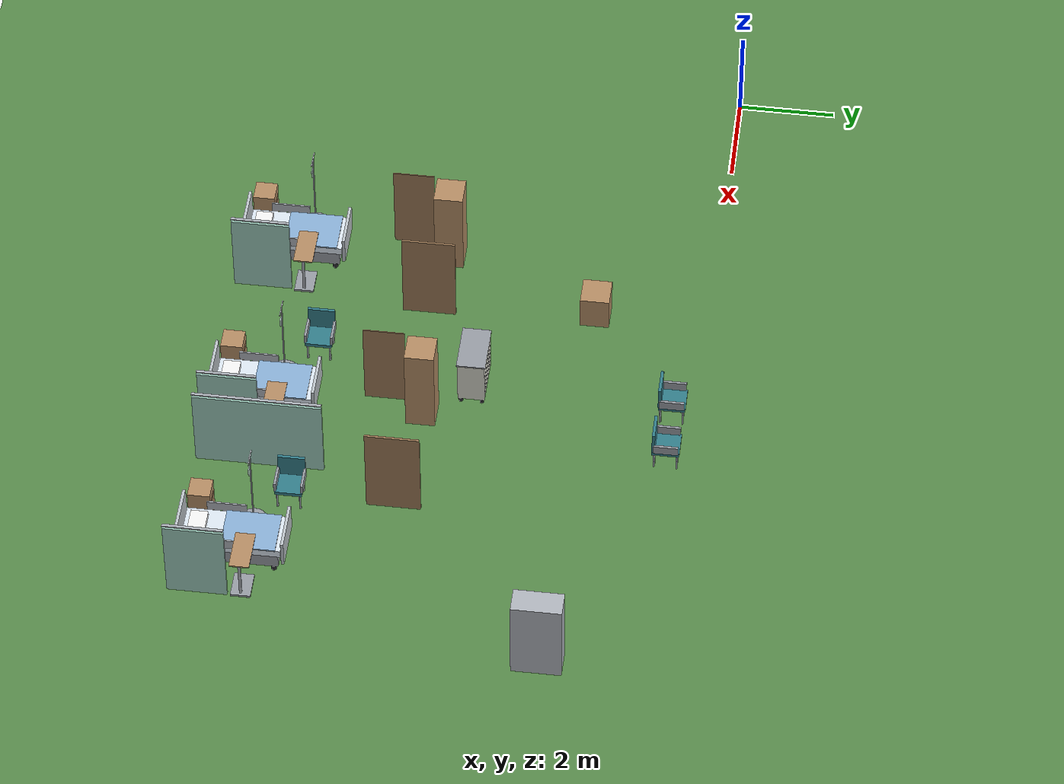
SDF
<sdf version="1.6">
 <world name="hospital">
  <include><uri>model://sun</uri></include>
  <model name="ground_plane">
   <static>true</static>
   <link name="link">
    <collision name="collision">
     <geometry><plane><normal>0 0 1</normal><size>100 100</size></plane></geometry>
     <surface>
      <contact><collide_bitmask>0xffff</collide_bitmask></contact>
      <friction><ode><mu>100</mu><mu2>50</mu2></ode></friction>
     </surface>
    </collision>
    <visual name="visual">
     <cast_shadows>false</cast_shadows>
     <geometry><plane><normal>0 0 1</normal><size>100 100</size></plane></geometry>
     <material>
      <ambient>0.35 0.55 0.3 1</ambient>
      <diffuse>0.35 0.55 0.3 1</diffuse>
      <specular>0 0 0 1</specular>
     </material>
    </visual>
   </link>
  </model>
  <model name="bathroom_door_S3">
   <static>true</static>
   <pose>4.76 -6.4 0 0 0 1.5708</pose>
   <link name="link">
    <visual name="v0">
     <pose>0 0 1 0 0 0</pose>
     <geometry><box><size>0.85 0.02 2</size></box></geometry>
     <material>
      <ambient>0.62 0.48 0.34 1</ambient>
      <diffuse>0.62 0.48 0.34 1</diffuse>
      <specular>0.1 0.1 0.1 1</specular>
     </material>
    </visual>
   </link>
  </model>
  <model name="door_S3">
   <static>true</static>
   <pose>6.7 -5.83 0 0 0 0</pose>
   <link name="link">
    <collision name="c0">
     <pose>0 0 1.04 0 0 0</pose>
     <geometry><box><size>0.045 1.1 2.08</size></box></geometry>
    </collision>
    <visual name="v0">
     <pose>0 0 1.04 0 0 0</pose>
     <geometry><box><size>0.045 1.1 2.08</size></box></geometry>
     <material>
      <ambient>0.62 0.48 0.34 1</ambient>
      <diffuse>0.62 0.48 0.34 1</diffuse>
      <specular>0.1 0.1 0.1 1</specular>
     </material>
    </visual>
   </link>
  </model>
  <model name="wardrobe_S3">
   <static>true</static>
   <pose>5.1 -5.6 0 0 0 6.2832</pose>
   <link name="link">
    <collision name="c0">
     <pose>0 0 1 0 0 0</pose>
     <geometry><box><size>0.6 0.6 2</size></box></geometry>
    </collision>
    <visual name="v0">
     <pose>0 0 1 0 0 0</pose>
     <geometry><box><size>0.6 0.6 2</size></box></geometry>
     <material>
      <ambient>0.72 0.56 0.4 1</ambient>
      <diffuse>0.72 0.56 0.4 1</diffuse>
      <specular>0.1 0.1 0.1 1</specular>
     </material>
    </visual>
    <visual name="v1">
     <pose>0 -0.301 1.025 0 0 0</pose>
     <geometry><box><size>0.02 0.005 0.25</size></box></geometry>
     <material>
      <ambient>0.6 0.62 0.65 1</ambient>
      <diffuse>0.6 0.62 0.65 1</diffuse>
      <specular>0.1 0.1 0.1 1</specular>
     </material>
    </visual>
   </link>
  </model>
  <model name="bed_S3">
   <static>true</static>
   <pose>5.3 -8.8 0 0 0 3.1416</pose>
   <link name="link">
    <collision name="c0">
     <pose>-0.38 -0.85 0.075 0 0 0</pose>
     <geometry><cylinder><radius>0.05</radius><length>0.15</length></cylinder></geometry>
    </collision>
    <visual name="v0">
     <pose>-0.38 -0.85 0.075 0 0 0</pose>
     <geometry><cylinder><radius>0.05</radius><length>0.15</length></cylinder></geometry>
     <material>
      <ambient>0.15 0.15 0.17 1</ambient>
      <diffuse>0.15 0.15 0.17 1</diffuse>
      <specular>0.1 0.1 0.1 1</specular>
     </material>
    </visual>
    <collision name="c1">
     <pose>-0.38 0.85 0.075 0 0 0</pose>
     <geometry><cylinder><radius>0.05</radius><length>0.15</length></cylinder></geometry>
    </collision>
    <visual name="v1">
     <pose>-0.38 0.85 0.075 0 0 0</pose>
     <geometry><cylinder><radius>0.05</radius><length>0.15</length></cylinder></geometry>
     <material>
      <ambient>0.15 0.15 0.17 1</ambient>
      <diffuse>0.15 0.15 0.17 1</diffuse>
      <specular>0.1 0.1 0.1 1</specular>
     </material>
    </visual>
    <collision name="c2">
     <pose>0.38 -0.85 0.075 0 0 0</pose>
     <geometry><cylinder><radius>0.05</radius><length>0.15</length></cylinder></geometry>
    </collision>
    <visual name="v2">
     <pose>0.38 -0.85 0.075 0 0 0</pose>
     <geometry><cylinder><radius>0.05</radius><length>0.15</length></cylinder></geometry>
     <material>
      <ambient>0.15 0.15 0.17 1</ambient>
      <diffuse>0.15 0.15 0.17 1</diffuse>
      <specular>0.1 0.1 0.1 1</specular>
     </material>
    </visual>
    <collision name="c3">
     <pose>0.38 0.85 0.075 0 0 0</pose>
     <geometry><cylinder><radius>0.05</radius><length>0.15</length></cylinder></geometry>
    </collision>
    <visual name="v3">
     <pose>0.38 0.85 0.075 0 0 0</pose>
     <geometry><cylinder><radius>0.05</radius><length>0.15</length></cylinder></geometry>
     <material>
      <ambient>0.15 0.15 0.17 1</ambient>
      <diffuse>0.15 0.15 0.17 1</diffuse>
      <specular>0.1 0.1 0.1 1</specular>
     </material>
    </visual>
    <collision name="c4">
     <pose>0 0 0.3 0 0 0</pose>
     <geometry><box><size>0.9 1.9 0.3</size></box></geometry>
    </collision>
    <visual name="v4">
     <pose>0 0 0.3 0 0 0</pose>
     <geometry><box><size>0.9 1.9 0.3</size></box></geometry>
     <material>
      <ambient>0.6 0.62 0.65 1</ambient>
      <diffuse>0.6 0.62 0.65 1</diffuse>
      <specular>0.1 0.1 0.1 1</specular>
     </material>
    </visual>
    <visual name="v5">
     <pose>0 0 0.535 0 0 0</pose>
     <geometry><box><size>0.9 2 0.17</size></box></geometry>
     <material>
      <ambient>0.88 0.92 0.96 1</ambient>
      <diffuse>0.88 0.92 0.96 1</diffuse>
      <specular>0.1 0.1 0.1 1</specular>
     </material>
    </visual>
    <collision name="c6">
     <pose>0 1.05 0.7 0 0 0</pose>
     <geometry><box><size>1 0.06 0.8</size></box></geometry>
    </collision>
    <visual name="v6">
     <pose>0 1.05 0.7 0 0 0</pose>
     <geometry><box><size>1 0.06 0.8</size></box></geometry>
     <material>
      <ambient>0.75 0.78 0.8 1</ambient>
      <diffuse>0.75 0.78 0.8 1</diffuse>
      <specular>0.1 0.1 0.1 1</specular>
     </material>
    </visual>
    <collision name="c7">
     <pose>0 -1.05 0.6 0 0 0</pose>
     <geometry><box><size>1 0.06 0.6</size></box></geometry>
    </collision>
    <visual name="v7">
     <pose>0 -1.05 0.6 0 0 0</pose>
     <geometry><box><size>1 0.06 0.6</size></box></geometry>
     <material>
      <ambient>0.75 0.78 0.8 1</ambient>
      <diffuse>0.75 0.78 0.8 1</diffuse>
      <specular>0.1 0.1 0.1 1</specular>
     </material>
    </visual>
    <visual name="v8">
     <pose>0 0.72 0.68 0 0 0</pose>
     <geometry><box><size>0.6 0.35 0.12</size></box></geometry>
     <material>
      <ambient>0.97 0.97 0.97 1</ambient>
      <diffuse>0.97 0.97 0.97 1</diffuse>
      <specular>0.1 0.1 0.1 1</specular>
     </material>
    </visual>
    <visual name="v9">
     <pose>0 -0.35 0.635 0 0 0</pose>
     <geometry><box><size>0.92 1.1 0.03</size></box></geometry>
     <material>
      <ambient>0.55 0.7 0.85 1</ambient>
      <diffuse>0.55 0.7 0.85 1</diffuse>
      <specular>0.1 0.1 0.1 1</specular>
     </material>
    </visual>
    <visual name="v10">
     <pose>-0.47 0.2 0.73 0 0 0</pose>
     <geometry><box><size>0.03 0.8 0.22</size></box></geometry>
     <material>
      <ambient>0.7 0.72 0.75 1</ambient>
      <diffuse>0.7 0.72 0.75 1</diffuse>
      <specular>0.1 0.1 0.1 1</specular>
     </material>
    </visual>
    <visual name="v11">
     <pose>0.47 0.2 0.73 0 0 0</pose>
     <geometry><box><size>0.03 0.8 0.22</size></box></geometry>
     <material>
      <ambient>0.7 0.72 0.75 1</ambient>
      <diffuse>0.7 0.72 0.75 1</diffuse>
      <specular>0.1 0.1 0.1 1</specular>
     </material>
    </visual>
   </link>
  </model>
  <model name="bedside_cabinet_S3">
   <static>true</static>
   <pose>4.45 -9.6 0 0 0 3.1416</pose>
   <link name="link">
    <collision name="c0">
     <pose>0 0 0.4 0 0 0</pose>
     <geometry><box><size>0.45 0.45 0.8</size></box></geometry>
    </collision>
    <visual name="v0">
     <pose>0 0 0.4 0 0 0</pose>
     <geometry><box><size>0.45 0.45 0.8</size></box></geometry>
     <material>
      <ambient>0.72 0.56 0.4 1</ambient>
      <diffuse>0.72 0.56 0.4 1</diffuse>
      <specular>0.1 0.1 0.1 1</specular>
     </material>
    </visual>
    <visual name="v1">
     <pose>0 -0.226 0.51 0 0 0</pose>
     <geometry><box><size>0.35 0.005 0.12</size></box></geometry>
     <material>
      <ambient>0.6 0.45 0.32 1</ambient>
      <diffuse>0.6 0.45 0.32 1</diffuse>
      <specular>0.1 0.1 0.1 1</specular>
     </material>
    </visual>
   </link>
  </model>
  <model name="iv_stand_S3">
   <static>true</static>
   <pose>4.5 -8.55 0 0 0 0</pose>
   <link name="link">
    <collision name="c0">
     <pose>0 0 0.015 0 0 0</pose>
     <geometry><cylinder><radius>0.28</radius><length>0.03</length></cylinder></geometry>
    </collision>
    <visual name="v0">
     <pose>0 0 0.015 0 0 0</pose>
     <geometry><cylinder><radius>0.28</radius><length>0.03</length></cylinder></geometry>
     <material>
      <ambient>0.6 0.62 0.65 1</ambient>
      <diffuse>0.6 0.62 0.65 1</diffuse>
      <specular>0.1 0.1 0.1 1</specular>
     </material>
    </visual>
    <collision name="c1">
     <pose>0 0 0.98 0 0 0</pose>
     <geometry><cylinder><radius>0.015</radius><length>1.9</length></cylinder></geometry>
    </collision>
    <visual name="v1">
     <pose>0 0 0.98 0 0 0</pose>
     <geometry><cylinder><radius>0.015</radius><length>1.9</length></cylinder></geometry>
     <material>
      <ambient>0.7 0.72 0.75 1</ambient>
      <diffuse>0.7 0.72 0.75 1</diffuse>
      <specular>0.1 0.1 0.1 1</specular>
     </material>
    </visual>
    <visual name="v2">
     <pose>0 0 1.91 0 0 0</pose>
     <geometry><box><size>0.4 0.02 0.02</size></box></geometry>
     <material>
      <ambient>0.7 0.72 0.75 1</ambient>
      <diffuse>0.7 0.72 0.75 1</diffuse>
      <specular>0.1 0.1 0.1 1</specular>
     </material>
    </visual>
    <visual name="v3">
     <pose>0.12 0 1.64 0 0 0</pose>
     <geometry><box><size>0.1 0.03 0.18</size></box></geometry>
     <material>
      <ambient>0.85 0.92 0.95 0.7</ambient>
      <diffuse>0.85 0.92 0.95 0.7</diffuse>
      <specular>0.1 0.1 0.1 1</specular>
     </material>
    </visual>
   </link>
  </model>
  <model name="overbed_table_S3">
   <static>true</static>
   <pose>6.05 -8.5 0 0 0 0</pose>
   <link name="link">
    <collision name="c0">
     <pose>0.15 0 0.025 0 0 0</pose>
     <geometry><box><size>0.55 0.4 0.05</size></box></geometry>
    </collision>
    <visual name="v0">
     <pose>0.15 0 0.025 0 0 0</pose>
     <geometry><box><size>0.55 0.4 0.05</size></box></geometry>
     <material>
      <ambient>0.6 0.62 0.65 1</ambient>
      <diffuse>0.6 0.62 0.65 1</diffuse>
      <specular>0.1 0.1 0.1 1</specular>
     </material>
    </visual>
    <collision name="c1">
     <pose>0.35 0 0.45 0 0 0</pose>
     <geometry><box><size>0.05 0.05 0.8</size></box></geometry>
    </collision>
    <visual name="v1">
     <pose>0.35 0 0.45 0 0 0</pose>
     <geometry><box><size>0.05 0.05 0.8</size></box></geometry>
     <material>
      <ambient>0.7 0.72 0.75 1</ambient>
      <diffuse>0.7 0.72 0.75 1</diffuse>
      <specular>0.1 0.1 0.1 1</specular>
     </material>
    </visual>
    <visual name="v2">
     <pose>-0.05 0 0.865 0 0 0</pose>
     <geometry><box><size>0.85 0.4 0.03</size></box></geometry>
     <material>
      <ambient>0.72 0.56 0.4 1</ambient>
      <diffuse>0.72 0.56 0.4 1</diffuse>
      <specular>0.1 0.1 0.1 1</specular>
     </material>
    </visual>
   </link>
  </model>
  <model name="curtain_S3">
   <static>true</static>
   <pose>6.7 -9.3 0 0 0 0</pose>
   <link name="link">
    <collision name="c0">
     <pose>0 0 1.275 0 0 0</pose>
     <geometry><box><size>0.06 1.2 1.85</size></box></geometry>
    </collision>
    <visual name="v0">
     <pose>0 0 1.275 0 0 0</pose>
     <geometry><box><size>0.06 1.2 1.85</size></box></geometry>
     <material>
      <ambient>0.62 0.8 0.74 1</ambient>
      <diffuse>0.62 0.8 0.74 1</diffuse>
      <specular>0.1 0.1 0.1 1</specular>
     </material>
    </visual>
    <visual name="v1">
     <pose>0 0 2.265 0 0 0</pose>
     <geometry><box><size>0.06 1.2 0.03</size></box></geometry>
     <material>
      <ambient>0.7 0.72 0.75 1</ambient>
      <diffuse>0.7 0.72 0.75 1</diffuse>
      <specular>0.1 0.1 0.1 1</specular>
     </material>
    </visual>
   </link>
  </model>
  <model name="bathroom_door_S4">
   <static>true</static>
   <pose>9.16 -6.4 0 0 0 1.5708</pose>
   <link name="link">
    <visual name="v0">
     <pose>0 0 1 0 0 0</pose>
     <geometry><box><size>0.85 0.02 2</size></box></geometry>
     <material>
      <ambient>0.62 0.48 0.34 1</ambient>
      <diffuse>0.62 0.48 0.34 1</diffuse>
      <specular>0.1 0.1 0.1 1</specular>
     </material>
    </visual>
   </link>
  </model>
  <model name="door_S4">
   <static>true</static>
   <pose>12 -5.83 0 0 0 0</pose>
   <link name="link">
    <collision name="c0">
     <pose>0 0 1.04 0 0 0</pose>
     <geometry><box><size>0.045 1.1 2.08</size></box></geometry>
    </collision>
    <visual name="v0">
     <pose>0 0 1.04 0 0 0</pose>
     <geometry><box><size>0.045 1.1 2.08</size></box></geometry>
     <material>
      <ambient>0.62 0.48 0.34 1</ambient>
      <diffuse>0.62 0.48 0.34 1</diffuse>
      <specular>0.1 0.1 0.1 1</specular>
     </material>
    </visual>
   </link>
  </model>
  <model name="wardrobe_S4">
   <static>true</static>
   <pose>9.5 -5.6 0 0 0 6.2832</pose>
   <link name="link">
    <collision name="c0">
     <pose>0 0 1 0 0 0</pose>
     <geometry><box><size>0.6 0.6 2</size></box></geometry>
    </collision>
    <visual name="v0">
     <pose>0 0 1 0 0 0</pose>
     <geometry><box><size>0.6 0.6 2</size></box></geometry>
     <material>
      <ambient>0.72 0.56 0.4 1</ambient>
      <diffuse>0.72 0.56 0.4 1</diffuse>
      <specular>0.1 0.1 0.1 1</specular>
     </material>
    </visual>
    <visual name="v1">
     <pose>0 -0.301 1.025 0 0 0</pose>
     <geometry><box><size>0.02 0.005 0.25</size></box></geometry>
     <material>
      <ambient>0.6 0.62 0.65 1</ambient>
      <diffuse>0.6 0.62 0.65 1</diffuse>
      <specular>0.1 0.1 0.1 1</specular>
     </material>
    </visual>
   </link>
  </model>
  <model name="bed_S4a">
   <static>true</static>
   <pose>9.5 -8.8 0 0 0 3.1416</pose>
   <link name="link">
    <collision name="c0">
     <pose>-0.38 -0.85 0.075 0 0 0</pose>
     <geometry><cylinder><radius>0.05</radius><length>0.15</length></cylinder></geometry>
    </collision>
    <visual name="v0">
     <pose>-0.38 -0.85 0.075 0 0 0</pose>
     <geometry><cylinder><radius>0.05</radius><length>0.15</length></cylinder></geometry>
     <material>
      <ambient>0.15 0.15 0.17 1</ambient>
      <diffuse>0.15 0.15 0.17 1</diffuse>
      <specular>0.1 0.1 0.1 1</specular>
     </material>
    </visual>
    <collision name="c1">
     <pose>-0.38 0.85 0.075 0 0 0</pose>
     <geometry><cylinder><radius>0.05</radius><length>0.15</length></cylinder></geometry>
    </collision>
    <visual name="v1">
     <pose>-0.38 0.85 0.075 0 0 0</pose>
     <geometry><cylinder><radius>0.05</radius><length>0.15</length></cylinder></geometry>
     <material>
      <ambient>0.15 0.15 0.17 1</ambient>
      <diffuse>0.15 0.15 0.17 1</diffuse>
      <specular>0.1 0.1 0.1 1</specular>
     </material>
    </visual>
    <collision name="c2">
     <pose>0.38 -0.85 0.075 0 0 0</pose>
     <geometry><cylinder><radius>0.05</radius><length>0.15</length></cylinder></geometry>
    </collision>
    <visual name="v2">
     <pose>0.38 -0.85 0.075 0 0 0</pose>
     <geometry><cylinder><radius>0.05</radius><length>0.15</length></cylinder></geometry>
     <material>
      <ambient>0.15 0.15 0.17 1</ambient>
      <diffuse>0.15 0.15 0.17 1</diffuse>
      <specular>0.1 0.1 0.1 1</specular>
     </material>
    </visual>
    <collision name="c3">
     <pose>0.38 0.85 0.075 0 0 0</pose>
     <geometry><cylinder><radius>0.05</radius><length>0.15</length></cylinder></geometry>
    </collision>
    <visual name="v3">
     <pose>0.38 0.85 0.075 0 0 0</pose>
     <geometry><cylinder><radius>0.05</radius><length>0.15</length></cylinder></geometry>
     <material>
      <ambient>0.15 0.15 0.17 1</ambient>
      <diffuse>0.15 0.15 0.17 1</diffuse>
      <specular>0.1 0.1 0.1 1</specular>
     </material>
    </visual>
    <collision name="c4">
     <pose>0 0 0.3 0 0 0</pose>
     <geometry><box><size>0.9 1.9 0.3</size></box></geometry>
    </collision>
    <visual name="v4">
     <pose>0 0 0.3 0 0 0</pose>
     <geometry><box><size>0.9 1.9 0.3</size></box></geometry>
     <material>
      <ambient>0.6 0.62 0.65 1</ambient>
      <diffuse>0.6 0.62 0.65 1</diffuse>
      <specular>0.1 0.1 0.1 1</specular>
     </material>
    </visual>
    <visual name="v5">
     <pose>0 0 0.535 0 0 0</pose>
     <geometry><box><size>0.9 2 0.17</size></box></geometry>
     <material>
      <ambient>0.88 0.92 0.96 1</ambient>
      <diffuse>0.88 0.92 0.96 1</diffuse>
      <specular>0.1 0.1 0.1 1</specular>
     </material>
    </visual>
    <collision name="c6">
     <pose>0 1.05 0.7 0 0 0</pose>
     <geometry><box><size>1 0.06 0.8</size></box></geometry>
    </collision>
    <visual name="v6">
     <pose>0 1.05 0.7 0 0 0</pose>
     <geometry><box><size>1 0.06 0.8</size></box></geometry>
     <material>
      <ambient>0.75 0.78 0.8 1</ambient>
      <diffuse>0.75 0.78 0.8 1</diffuse>
      <specular>0.1 0.1 0.1 1</specular>
     </material>
    </visual>
    <collision name="c7">
     <pose>0 -1.05 0.6 0 0 0</pose>
     <geometry><box><size>1 0.06 0.6</size></box></geometry>
    </collision>
    <visual name="v7">
     <pose>0 -1.05 0.6 0 0 0</pose>
     <geometry><box><size>1 0.06 0.6</size></box></geometry>
     <material>
      <ambient>0.75 0.78 0.8 1</ambient>
      <diffuse>0.75 0.78 0.8 1</diffuse>
      <specular>0.1 0.1 0.1 1</specular>
     </material>
    </visual>
    <visual name="v8">
     <pose>0 0.72 0.68 0 0 0</pose>
     <geometry><box><size>0.6 0.35 0.12</size></box></geometry>
     <material>
      <ambient>0.97 0.97 0.97 1</ambient>
      <diffuse>0.97 0.97 0.97 1</diffuse>
      <specular>0.1 0.1 0.1 1</specular>
     </material>
    </visual>
    <visual name="v9">
     <pose>0 -0.35 0.635 0 0 0</pose>
     <geometry><box><size>0.92 1.1 0.03</size></box></geometry>
     <material>
      <ambient>0.55 0.7 0.85 1</ambient>
      <diffuse>0.55 0.7 0.85 1</diffuse>
      <specular>0.1 0.1 0.1 1</specular>
     </material>
    </visual>
    <visual name="v10">
     <pose>-0.47 0.2 0.73 0 0 0</pose>
     <geometry><box><size>0.03 0.8 0.22</size></box></geometry>
     <material>
      <ambient>0.7 0.72 0.75 1</ambient>
      <diffuse>0.7 0.72 0.75 1</diffuse>
      <specular>0.1 0.1 0.1 1</specular>
     </material>
    </visual>
    <visual name="v11">
     <pose>0.47 0.2 0.73 0 0 0</pose>
     <geometry><box><size>0.03 0.8 0.22</size></box></geometry>
     <material>
      <ambient>0.7 0.72 0.75 1</ambient>
      <diffuse>0.7 0.72 0.75 1</diffuse>
      <specular>0.1 0.1 0.1 1</specular>
     </material>
    </visual>
   </link>
  </model>
  <model name="bedside_cabinet_S4a">
   <static>true</static>
   <pose>8.65 -9.6 0 0 0 3.1416</pose>
   <link name="link">
    <collision name="c0">
     <pose>0 0 0.4 0 0 0</pose>
     <geometry><box><size>0.45 0.45 0.8</size></box></geometry>
    </collision>
    <visual name="v0">
     <pose>0 0 0.4 0 0 0</pose>
     <geometry><box><size>0.45 0.45 0.8</size></box></geometry>
     <material>
      <ambient>0.72 0.56 0.4 1</ambient>
      <diffuse>0.72 0.56 0.4 1</diffuse>
      <specular>0.1 0.1 0.1 1</specular>
     </material>
    </visual>
    <visual name="v1">
     <pose>0 -0.226 0.51 0 0 0</pose>
     <geometry><box><size>0.35 0.005 0.12</size></box></geometry>
     <material>
      <ambient>0.6 0.45 0.32 1</ambient>
      <diffuse>0.6 0.45 0.32 1</diffuse>
      <specular>0.1 0.1 0.1 1</specular>
     </material>
    </visual>
   </link>
  </model>
  <model name="iv_stand_S4a">
   <static>true</static>
   <pose>8.7 -8.55 0 0 0 0</pose>
   <link name="link">
    <collision name="c0">
     <pose>0 0 0.015 0 0 0</pose>
     <geometry><cylinder><radius>0.28</radius><length>0.03</length></cylinder></geometry>
    </collision>
    <visual name="v0">
     <pose>0 0 0.015 0 0 0</pose>
     <geometry><cylinder><radius>0.28</radius><length>0.03</length></cylinder></geometry>
     <material>
      <ambient>0.6 0.62 0.65 1</ambient>
      <diffuse>0.6 0.62 0.65 1</diffuse>
      <specular>0.1 0.1 0.1 1</specular>
     </material>
    </visual>
    <collision name="c1">
     <pose>0 0 0.98 0 0 0</pose>
     <geometry><cylinder><radius>0.015</radius><length>1.9</length></cylinder></geometry>
    </collision>
    <visual name="v1">
     <pose>0 0 0.98 0 0 0</pose>
     <geometry><cylinder><radius>0.015</radius><length>1.9</length></cylinder></geometry>
     <material>
      <ambient>0.7 0.72 0.75 1</ambient>
      <diffuse>0.7 0.72 0.75 1</diffuse>
      <specular>0.1 0.1 0.1 1</specular>
     </material>
    </visual>
    <visual name="v2">
     <pose>0 0 1.91 0 0 0</pose>
     <geometry><box><size>0.4 0.02 0.02</size></box></geometry>
     <material>
      <ambient>0.7 0.72 0.75 1</ambient>
      <diffuse>0.7 0.72 0.75 1</diffuse>
      <specular>0.1 0.1 0.1 1</specular>
     </material>
    </visual>
    <visual name="v3">
     <pose>0.12 0 1.64 0 0 0</pose>
     <geometry><box><size>0.1 0.03 0.18</size></box></geometry>
     <material>
      <ambient>0.85 0.92 0.95 0.7</ambient>
      <diffuse>0.85 0.92 0.95 0.7</diffuse>
      <specular>0.1 0.1 0.1 1</specular>
     </material>
    </visual>
   </link>
  </model>
  <model name="visitor_chair_S4a">
   <static>true</static>
   <pose>8.05 -7.9 0 0 0 1.5708</pose>
   <link name="link">
    <collision name="c0">
     <pose>-0.23 -0.23 0.2 0 0 0</pose>
     <geometry><cylinder><radius>0.02</radius><length>0.4</length></cylinder></geometry>
    </collision>
    <visual name="v0">
     <pose>-0.23 -0.23 0.2 0 0 0</pose>
     <geometry><cylinder><radius>0.02</radius><length>0.4</length></cylinder></geometry>
     <material>
      <ambient>0.6 0.62 0.65 1</ambient>
      <diffuse>0.6 0.62 0.65 1</diffuse>
      <specular>0.1 0.1 0.1 1</specular>
     </material>
    </visual>
    <collision name="c1">
     <pose>-0.23 0.23 0.2 0 0 0</pose>
     <geometry><cylinder><radius>0.02</radius><length>0.4</length></cylinder></geometry>
    </collision>
    <visual name="v1">
     <pose>-0.23 0.23 0.2 0 0 0</pose>
     <geometry><cylinder><radius>0.02</radius><length>0.4</length></cylinder></geometry>
     <material>
      <ambient>0.6 0.62 0.65 1</ambient>
      <diffuse>0.6 0.62 0.65 1</diffuse>
      <specular>0.1 0.1 0.1 1</specular>
     </material>
    </visual>
    <collision name="c2">
     <pose>0.23 -0.23 0.2 0 0 0</pose>
     <geometry><cylinder><radius>0.02</radius><length>0.4</length></cylinder></geometry>
    </collision>
    <visual name="v2">
     <pose>0.23 -0.23 0.2 0 0 0</pose>
     <geometry><cylinder><radius>0.02</radius><length>0.4</length></cylinder></geometry>
     <material>
      <ambient>0.6 0.62 0.65 1</ambient>
      <diffuse>0.6 0.62 0.65 1</diffuse>
      <specular>0.1 0.1 0.1 1</specular>
     </material>
    </visual>
    <collision name="c3">
     <pose>0.23 0.23 0.2 0 0 0</pose>
     <geometry><cylinder><radius>0.02</radius><length>0.4</length></cylinder></geometry>
    </collision>
    <visual name="v3">
     <pose>0.23 0.23 0.2 0 0 0</pose>
     <geometry><cylinder><radius>0.02</radius><length>0.4</length></cylinder></geometry>
     <material>
      <ambient>0.6 0.62 0.65 1</ambient>
      <diffuse>0.6 0.62 0.65 1</diffuse>
      <specular>0.1 0.1 0.1 1</specular>
     </material>
    </visual>
    <visual name="v4">
     <pose>0 0 0.44 0 0 0</pose>
     <geometry><box><size>0.55 0.55 0.08</size></box></geometry>
     <material>
      <ambient>0.2 0.5 0.55 1</ambient>
      <diffuse>0.2 0.5 0.55 1</diffuse>
      <specular>0.1 0.1 0.1 1</specular>
     </material>
    </visual>
    <visual name="v5">
     <pose>0 0.25 0.73 0 0 0</pose>
     <geometry><box><size>0.55 0.06 0.5</size></box></geometry>
     <material>
      <ambient>0.2 0.5 0.55 1</ambient>
      <diffuse>0.2 0.5 0.55 1</diffuse>
      <specular>0.1 0.1 0.1 1</specular>
     </material>
    </visual>
    <visual name="v6">
     <pose>-0.27 0 0.58 0 0 0</pose>
     <geometry><box><size>0.05 0.5 0.2</size></box></geometry>
     <material>
      <ambient>0.6 0.62 0.65 1</ambient>
      <diffuse>0.6 0.62 0.65 1</diffuse>
      <specular>0.1 0.1 0.1 1</specular>
     </material>
    </visual>
    <visual name="v7">
     <pose>0.27 0 0.58 0 0 0</pose>
     <geometry><box><size>0.05 0.5 0.2</size></box></geometry>
     <material>
      <ambient>0.6 0.62 0.65 1</ambient>
      <diffuse>0.6 0.62 0.65 1</diffuse>
      <specular>0.1 0.1 0.1 1</specular>
     </material>
    </visual>
   </link>
  </model>
  <model name="overbed_table_S4a">
   <static>true</static>
   <pose>10.25 -8.5 0 0 0 0</pose>
   <link name="link">
    <collision name="c0">
     <pose>0.15 0 0.025 0 0 0</pose>
     <geometry><box><size>0.55 0.4 0.05</size></box></geometry>
    </collision>
    <visual name="v0">
     <pose>0.15 0 0.025 0 0 0</pose>
     <geometry><box><size>0.55 0.4 0.05</size></box></geometry>
     <material>
      <ambient>0.6 0.62 0.65 1</ambient>
      <diffuse>0.6 0.62 0.65 1</diffuse>
      <specular>0.1 0.1 0.1 1</specular>
     </material>
    </visual>
    <collision name="c1">
     <pose>0.35 0 0.45 0 0 0</pose>
     <geometry><box><size>0.05 0.05 0.8</size></box></geometry>
    </collision>
    <visual name="v1">
     <pose>0.35 0 0.45 0 0 0</pose>
     <geometry><box><size>0.05 0.05 0.8</size></box></geometry>
     <material>
      <ambient>0.7 0.72 0.75 1</ambient>
      <diffuse>0.7 0.72 0.75 1</diffuse>
      <specular>0.1 0.1 0.1 1</specular>
     </material>
    </visual>
    <visual name="v2">
     <pose>-0.05 0 0.865 0 0 0</pose>
     <geometry><box><size>0.85 0.4 0.03</size></box></geometry>
     <material>
      <ambient>0.72 0.56 0.4 1</ambient>
      <diffuse>0.72 0.56 0.4 1</diffuse>
      <specular>0.1 0.1 0.1 1</specular>
     </material>
    </visual>
   </link>
  </model>
  <model name="curtain_S4a">
   <static>true</static>
   <pose>10.9 -9.3 0 0 0 0</pose>
   <link name="link">
    <collision name="c0">
     <pose>0 0 1.275 0 0 0</pose>
     <geometry><box><size>0.06 1.2 1.85</size></box></geometry>
    </collision>
    <visual name="v0">
     <pose>0 0 1.275 0 0 0</pose>
     <geometry><box><size>0.06 1.2 1.85</size></box></geometry>
     <material>
      <ambient>0.62 0.8 0.74 1</ambient>
      <diffuse>0.62 0.8 0.74 1</diffuse>
      <specular>0.1 0.1 0.1 1</specular>
     </material>
    </visual>
    <visual name="v1">
     <pose>0 0 2.265 0 0 0</pose>
     <geometry><box><size>0.06 1.2 0.03</size></box></geometry>
     <material>
      <ambient>0.7 0.72 0.75 1</ambient>
      <diffuse>0.7 0.72 0.75 1</diffuse>
      <specular>0.1 0.1 0.1 1</specular>
     </material>
    </visual>
   </link>
  </model>
  <model name="bed_S4b">
   <static>true</static>
   <pose>13.5 -8.8 0 0 0 3.1416</pose>
   <link name="link">
    <collision name="c0">
     <pose>-0.38 -0.85 0.075 0 0 0</pose>
     <geometry><cylinder><radius>0.05</radius><length>0.15</length></cylinder></geometry>
    </collision>
    <visual name="v0">
     <pose>-0.38 -0.85 0.075 0 0 0</pose>
     <geometry><cylinder><radius>0.05</radius><length>0.15</length></cylinder></geometry>
     <material>
      <ambient>0.15 0.15 0.17 1</ambient>
      <diffuse>0.15 0.15 0.17 1</diffuse>
      <specular>0.1 0.1 0.1 1</specular>
     </material>
    </visual>
    <collision name="c1">
     <pose>-0.38 0.85 0.075 0 0 0</pose>
     <geometry><cylinder><radius>0.05</radius><length>0.15</length></cylinder></geometry>
    </collision>
    <visual name="v1">
     <pose>-0.38 0.85 0.075 0 0 0</pose>
     <geometry><cylinder><radius>0.05</radius><length>0.15</length></cylinder></geometry>
     <material>
      <ambient>0.15 0.15 0.17 1</ambient>
      <diffuse>0.15 0.15 0.17 1</diffuse>
      <specular>0.1 0.1 0.1 1</specular>
     </material>
    </visual>
    <collision name="c2">
     <pose>0.38 -0.85 0.075 0 0 0</pose>
     <geometry><cylinder><radius>0.05</radius><length>0.15</length></cylinder></geometry>
    </collision>
    <visual name="v2">
     <pose>0.38 -0.85 0.075 0 0 0</pose>
     <geometry><cylinder><radius>0.05</radius><length>0.15</length></cylinder></geometry>
     <material>
      <ambient>0.15 0.15 0.17 1</ambient>
      <diffuse>0.15 0.15 0.17 1</diffuse>
      <specular>0.1 0.1 0.1 1</specular>
     </material>
    </visual>
    <collision name="c3">
     <pose>0.38 0.85 0.075 0 0 0</pose>
     <geometry><cylinder><radius>0.05</radius><length>0.15</length></cylinder></geometry>
    </collision>
    <visual name="v3">
     <pose>0.38 0.85 0.075 0 0 0</pose>
     <geometry><cylinder><radius>0.05</radius><length>0.15</length></cylinder></geometry>
     <material>
      <ambient>0.15 0.15 0.17 1</ambient>
      <diffuse>0.15 0.15 0.17 1</diffuse>
      <specular>0.1 0.1 0.1 1</specular>
     </material>
    </visual>
    <collision name="c4">
     <pose>0 0 0.3 0 0 0</pose>
     <geometry><box><size>0.9 1.9 0.3</size></box></geometry>
    </collision>
    <visual name="v4">
     <pose>0 0 0.3 0 0 0</pose>
     <geometry><box><size>0.9 1.9 0.3</size></box></geometry>
     <material>
      <ambient>0.6 0.62 0.65 1</ambient>
      <diffuse>0.6 0.62 0.65 1</diffuse>
      <specular>0.1 0.1 0.1 1</specular>
     </material>
    </visual>
    <visual name="v5">
     <pose>0 0 0.535 0 0 0</pose>
     <geometry><box><size>0.9 2 0.17</size></box></geometry>
     <material>
      <ambient>0.88 0.92 0.96 1</ambient>
      <diffuse>0.88 0.92 0.96 1</diffuse>
      <specular>0.1 0.1 0.1 1</specular>
     </material>
    </visual>
    <collision name="c6">
     <pose>0 1.05 0.7 0 0 0</pose>
     <geometry><box><size>1 0.06 0.8</size></box></geometry>
    </collision>
    <visual name="v6">
     <pose>0 1.05 0.7 0 0 0</pose>
     <geometry><box><size>1 0.06 0.8</size></box></geometry>
     <material>
      <ambient>0.75 0.78 0.8 1</ambient>
      <diffuse>0.75 0.78 0.8 1</diffuse>
      <specular>0.1 0.1 0.1 1</specular>
     </material>
    </visual>
    <collision name="c7">
     <pose>0 -1.05 0.6 0 0 0</pose>
     <geometry><box><size>1 0.06 0.6</size></box></geometry>
    </collision>
    <visual name="v7">
     <pose>0 -1.05 0.6 0 0 0</pose>
     <geometry><box><size>1 0.06 0.6</size></box></geometry>
     <material>
      <ambient>0.75 0.78 0.8 1</ambient>
      <diffuse>0.75 0.78 0.8 1</diffuse>
      <specular>0.1 0.1 0.1 1</specular>
     </material>
    </visual>
    <visual name="v8">
     <pose>0 0.72 0.68 0 0 0</pose>
     <geometry><box><size>0.6 0.35 0.12</size></box></geometry>
     <material>
      <ambient>0.97 0.97 0.97 1</ambient>
      <diffuse>0.97 0.97 0.97 1</diffuse>
      <specular>0.1 0.1 0.1 1</specular>
     </material>
    </visual>
    <visual name="v9">
     <pose>0 -0.35 0.635 0 0 0</pose>
     <geometry><box><size>0.92 1.1 0.03</size></box></geometry>
     <material>
      <ambient>0.55 0.7 0.85 1</ambient>
      <diffuse>0.55 0.7 0.85 1</diffuse>
      <specular>0.1 0.1 0.1 1</specular>
     </material>
    </visual>
    <visual name="v10">
     <pose>-0.47 0.2 0.73 0 0 0</pose>
     <geometry><box><size>0.03 0.8 0.22</size></box></geometry>
     <material>
      <ambient>0.7 0.72 0.75 1</ambient>
      <diffuse>0.7 0.72 0.75 1</diffuse>
      <specular>0.1 0.1 0.1 1</specular>
     </material>
    </visual>
    <visual name="v11">
     <pose>0.47 0.2 0.73 0 0 0</pose>
     <geometry><box><size>0.03 0.8 0.22</size></box></geometry>
     <material>
      <ambient>0.7 0.72 0.75 1</ambient>
      <diffuse>0.7 0.72 0.75 1</diffuse>
      <specular>0.1 0.1 0.1 1</specular>
     </material>
    </visual>
   </link>
  </model>
  <model name="bedside_cabinet_S4b">
   <static>true</static>
   <pose>12.65 -9.6 0 0 0 3.1416</pose>
   <link name="link">
    <collision name="c0">
     <pose>0 0 0.4 0 0 0</pose>
     <geometry><box><size>0.45 0.45 0.8</size></box></geometry>
    </collision>
    <visual name="v0">
     <pose>0 0 0.4 0 0 0</pose>
     <geometry><box><size>0.45 0.45 0.8</size></box></geometry>
     <material>
      <ambient>0.72 0.56 0.4 1</ambient>
      <diffuse>0.72 0.56 0.4 1</diffuse>
      <specular>0.1 0.1 0.1 1</specular>
     </material>
    </visual>
    <visual name="v1">
     <pose>0 -0.226 0.51 0 0 0</pose>
     <geometry><box><size>0.35 0.005 0.12</size></box></geometry>
     <material>
      <ambient>0.6 0.45 0.32 1</ambient>
      <diffuse>0.6 0.45 0.32 1</diffuse>
      <specular>0.1 0.1 0.1 1</specular>
     </material>
    </visual>
   </link>
  </model>
  <model name="iv_stand_S4b">
   <static>true</static>
   <pose>12.7 -8.55 0 0 0 0</pose>
   <link name="link">
    <collision name="c0">
     <pose>0 0 0.015 0 0 0</pose>
     <geometry><cylinder><radius>0.28</radius><length>0.03</length></cylinder></geometry>
    </collision>
    <visual name="v0">
     <pose>0 0 0.015 0 0 0</pose>
     <geometry><cylinder><radius>0.28</radius><length>0.03</length></cylinder></geometry>
     <material>
      <ambient>0.6 0.62 0.65 1</ambient>
      <diffuse>0.6 0.62 0.65 1</diffuse>
      <specular>0.1 0.1 0.1 1</specular>
     </material>
    </visual>
    <collision name="c1">
     <pose>0 0 0.98 0 0 0</pose>
     <geometry><cylinder><radius>0.015</radius><length>1.9</length></cylinder></geometry>
    </collision>
    <visual name="v1">
     <pose>0 0 0.98 0 0 0</pose>
     <geometry><cylinder><radius>0.015</radius><length>1.9</length></cylinder></geometry>
     <material>
      <ambient>0.7 0.72 0.75 1</ambient>
      <diffuse>0.7 0.72 0.75 1</diffuse>
      <specular>0.1 0.1 0.1 1</specular>
     </material>
    </visual>
    <visual name="v2">
     <pose>0 0 1.91 0 0 0</pose>
     <geometry><box><size>0.4 0.02 0.02</size></box></geometry>
     <material>
      <ambient>0.7 0.72 0.75 1</ambient>
      <diffuse>0.7 0.72 0.75 1</diffuse>
      <specular>0.1 0.1 0.1 1</specular>
     </material>
    </visual>
    <visual name="v3">
     <pose>0.12 0 1.64 0 0 0</pose>
     <geometry><box><size>0.1 0.03 0.18</size></box></geometry>
     <material>
      <ambient>0.85 0.92 0.95 0.7</ambient>
      <diffuse>0.85 0.92 0.95 0.7</diffuse>
      <specular>0.1 0.1 0.1 1</specular>
     </material>
    </visual>
   </link>
  </model>
  <model name="visitor_chair_S4b">
   <static>true</static>
   <pose>12.05 -7.9 0 0 0 1.5708</pose>
   <link name="link">
    <collision name="c0">
     <pose>-0.23 -0.23 0.2 0 0 0</pose>
     <geometry><cylinder><radius>0.02</radius><length>0.4</length></cylinder></geometry>
    </collision>
    <visual name="v0">
     <pose>-0.23 -0.23 0.2 0 0 0</pose>
     <geometry><cylinder><radius>0.02</radius><length>0.4</length></cylinder></geometry>
     <material>
      <ambient>0.6 0.62 0.65 1</ambient>
      <diffuse>0.6 0.62 0.65 1</diffuse>
      <specular>0.1 0.1 0.1 1</specular>
     </material>
    </visual>
    <collision name="c1">
     <pose>-0.23 0.23 0.2 0 0 0</pose>
     <geometry><cylinder><radius>0.02</radius><length>0.4</length></cylinder></geometry>
    </collision>
    <visual name="v1">
     <pose>-0.23 0.23 0.2 0 0 0</pose>
     <geometry><cylinder><radius>0.02</radius><length>0.4</length></cylinder></geometry>
     <material>
      <ambient>0.6 0.62 0.65 1</ambient>
      <diffuse>0.6 0.62 0.65 1</diffuse>
      <specular>0.1 0.1 0.1 1</specular>
     </material>
    </visual>
    <collision name="c2">
     <pose>0.23 -0.23 0.2 0 0 0</pose>
     <geometry><cylinder><radius>0.02</radius><length>0.4</length></cylinder></geometry>
    </collision>
    <visual name="v2">
     <pose>0.23 -0.23 0.2 0 0 0</pose>
     <geometry><cylinder><radius>0.02</radius><length>0.4</length></cylinder></geometry>
     <material>
      <ambient>0.6 0.62 0.65 1</ambient>
      <diffuse>0.6 0.62 0.65 1</diffuse>
      <specular>0.1 0.1 0.1 1</specular>
     </material>
    </visual>
    <collision name="c3">
     <pose>0.23 0.23 0.2 0 0 0</pose>
     <geometry><cylinder><radius>0.02</radius><length>0.4</length></cylinder></geometry>
    </collision>
    <visual name="v3">
     <pose>0.23 0.23 0.2 0 0 0</pose>
     <geometry><cylinder><radius>0.02</radius><length>0.4</length></cylinder></geometry>
     <material>
      <ambient>0.6 0.62 0.65 1</ambient>
      <diffuse>0.6 0.62 0.65 1</diffuse>
      <specular>0.1 0.1 0.1 1</specular>
     </material>
    </visual>
    <visual name="v4">
     <pose>0 0 0.44 0 0 0</pose>
     <geometry><box><size>0.55 0.55 0.08</size></box></geometry>
     <material>
      <ambient>0.2 0.5 0.55 1</ambient>
      <diffuse>0.2 0.5 0.55 1</diffuse>
      <specular>0.1 0.1 0.1 1</specular>
     </material>
    </visual>
    <visual name="v5">
     <pose>0 0.25 0.73 0 0 0</pose>
     <geometry><box><size>0.55 0.06 0.5</size></box></geometry>
     <material>
      <ambient>0.2 0.5 0.55 1</ambient>
      <diffuse>0.2 0.5 0.55 1</diffuse>
      <specular>0.1 0.1 0.1 1</specular>
     </material>
    </visual>
    <visual name="v6">
     <pose>-0.27 0 0.58 0 0 0</pose>
     <geometry><box><size>0.05 0.5 0.2</size></box></geometry>
     <material>
      <ambient>0.6 0.62 0.65 1</ambient>
      <diffuse>0.6 0.62 0.65 1</diffuse>
      <specular>0.1 0.1 0.1 1</specular>
     </material>
    </visual>
    <visual name="v7">
     <pose>0.27 0 0.58 0 0 0</pose>
     <geometry><box><size>0.05 0.5 0.2</size></box></geometry>
     <material>
      <ambient>0.6 0.62 0.65 1</ambient>
      <diffuse>0.6 0.62 0.65 1</diffuse>
      <specular>0.1 0.1 0.1 1</specular>
     </material>
    </visual>
   </link>
  </model>
  <model name="overbed_table_S4b">
   <static>true</static>
   <pose>14.25 -8.5 0 0 0 0</pose>
   <link name="link">
    <collision name="c0">
     <pose>0.15 0 0.025 0 0 0</pose>
     <geometry><box><size>0.55 0.4 0.05</size></box></geometry>
    </collision>
    <visual name="v0">
     <pose>0.15 0 0.025 0 0 0</pose>
     <geometry><box><size>0.55 0.4 0.05</size></box></geometry>
     <material>
      <ambient>0.6 0.62 0.65 1</ambient>
      <diffuse>0.6 0.62 0.65 1</diffuse>
      <specular>0.1 0.1 0.1 1</specular>
     </material>
    </visual>
    <collision name="c1">
     <pose>0.35 0 0.45 0 0 0</pose>
     <geometry><box><size>0.05 0.05 0.8</size></box></geometry>
    </collision>
    <visual name="v1">
     <pose>0.35 0 0.45 0 0 0</pose>
     <geometry><box><size>0.05 0.05 0.8</size></box></geometry>
     <material>
      <ambient>0.7 0.72 0.75 1</ambient>
      <diffuse>0.7 0.72 0.75 1</diffuse>
      <specular>0.1 0.1 0.1 1</specular>
     </material>
    </visual>
    <visual name="v2">
     <pose>-0.05 0 0.865 0 0 0</pose>
     <geometry><box><size>0.85 0.4 0.03</size></box></geometry>
     <material>
      <ambient>0.72 0.56 0.4 1</ambient>
      <diffuse>0.72 0.56 0.4 1</diffuse>
      <specular>0.1 0.1 0.1 1</specular>
     </material>
    </visual>
   </link>
  </model>
  <model name="curtain_S4b">
   <static>true</static>
   <pose>14.9 -9.3 0 0 0 0</pose>
   <link name="link">
    <collision name="c0">
     <pose>0 0 1.275 0 0 0</pose>
     <geometry><box><size>0.06 1.2 1.85</size></box></geometry>
    </collision>
    <visual name="v0">
     <pose>0 0 1.275 0 0 0</pose>
     <geometry><box><size>0.06 1.2 1.85</size></box></geometry>
     <material>
      <ambient>0.62 0.8 0.74 1</ambient>
      <diffuse>0.62 0.8 0.74 1</diffuse>
      <specular>0.1 0.1 0.1 1</specular>
     </material>
    </visual>
    <visual name="v1">
     <pose>0 0 2.265 0 0 0</pose>
     <geometry><box><size>0.06 1.2 0.03</size></box></geometry>
     <material>
      <ambient>0.7 0.72 0.75 1</ambient>
      <diffuse>0.7 0.72 0.75 1</diffuse>
      <specular>0.1 0.1 0.1 1</specular>
     </material>
    </visual>
   </link>
  </model>
  <model name="curtain_S4_divider">
   <static>true</static>
   <pose>11.5 -8.6 0 0 0 0</pose>
   <link name="link">
    <collision name="c0">
     <pose>0 0 1.275 0 0 0</pose>
     <geometry><box><size>0.06 2.6 1.85</size></box></geometry>
    </collision>
    <visual name="v0">
     <pose>0 0 1.275 0 0 0</pose>
     <geometry><box><size>0.06 2.6 1.85</size></box></geometry>
     <material>
      <ambient>0.62 0.8 0.74 1</ambient>
      <diffuse>0.62 0.8 0.74 1</diffuse>
      <specular>0.1 0.1 0.1 1</specular>
     </material>
    </visual>
    <visual name="v1">
     <pose>0 0 2.265 0 0 0</pose>
     <geometry><box><size>0.06 2.6 0.03</size></box></geometry>
     <material>
      <ambient>0.7 0.72 0.75 1</ambient>
      <diffuse>0.7 0.72 0.75 1</diffuse>
      <specular>0.1 0.1 0.1 1</specular>
     </material>
    </visual>
   </link>
  </model>
  <model name="nurse_printer_table">
   <static>true</static>
   <pose>6.4 -2.4 0 0 0 0</pose>
   <link name="link">
    <collision name="c0">
     <pose>0 0 0.375 0 0 0</pose>
     <geometry><box><size>0.6 0.6 0.75</size></box></geometry>
    </collision>
    <visual name="v0">
     <pose>0 0 0.375 0 0 0</pose>
     <geometry><box><size>0.6 0.6 0.75</size></box></geometry>
     <material>
      <ambient>0.72 0.56 0.4 1</ambient>
      <diffuse>0.72 0.56 0.4 1</diffuse>
      <specular>0.1 0.1 0.1 1</specular>
     </material>
    </visual>
   </link>
  </model>
  <model name="lounge_chair_0">
   <static>true</static>
   <pose>8.9 -0.55 0 0 0 3.1416</pose>
   <link name="link">
    <collision name="c0">
     <pose>-0.23 -0.23 0.2 0 0 0</pose>
     <geometry><cylinder><radius>0.02</radius><length>0.4</length></cylinder></geometry>
    </collision>
    <visual name="v0">
     <pose>-0.23 -0.23 0.2 0 0 0</pose>
     <geometry><cylinder><radius>0.02</radius><length>0.4</length></cylinder></geometry>
     <material>
      <ambient>0.6 0.62 0.65 1</ambient>
      <diffuse>0.6 0.62 0.65 1</diffuse>
      <specular>0.1 0.1 0.1 1</specular>
     </material>
    </visual>
    <collision name="c1">
     <pose>-0.23 0.23 0.2 0 0 0</pose>
     <geometry><cylinder><radius>0.02</radius><length>0.4</length></cylinder></geometry>
    </collision>
    <visual name="v1">
     <pose>-0.23 0.23 0.2 0 0 0</pose>
     <geometry><cylinder><radius>0.02</radius><length>0.4</length></cylinder></geometry>
     <material>
      <ambient>0.6 0.62 0.65 1</ambient>
      <diffuse>0.6 0.62 0.65 1</diffuse>
      <specular>0.1 0.1 0.1 1</specular>
     </material>
    </visual>
    <collision name="c2">
     <pose>0.23 -0.23 0.2 0 0 0</pose>
     <geometry><cylinder><radius>0.02</radius><length>0.4</length></cylinder></geometry>
    </collision>
    <visual name="v2">
     <pose>0.23 -0.23 0.2 0 0 0</pose>
     <geometry><cylinder><radius>0.02</radius><length>0.4</length></cylinder></geometry>
     <material>
      <ambient>0.6 0.62 0.65 1</ambient>
      <diffuse>0.6 0.62 0.65 1</diffuse>
      <specular>0.1 0.1 0.1 1</specular>
     </material>
    </visual>
    <collision name="c3">
     <pose>0.23 0.23 0.2 0 0 0</pose>
     <geometry><cylinder><radius>0.02</radius><length>0.4</length></cylinder></geometry>
    </collision>
    <visual name="v3">
     <pose>0.23 0.23 0.2 0 0 0</pose>
     <geometry><cylinder><radius>0.02</radius><length>0.4</length></cylinder></geometry>
     <material>
      <ambient>0.6 0.62 0.65 1</ambient>
      <diffuse>0.6 0.62 0.65 1</diffuse>
      <specular>0.1 0.1 0.1 1</specular>
     </material>
    </visual>
    <visual name="v4">
     <pose>0 0 0.44 0 0 0</pose>
     <geometry><box><size>0.55 0.55 0.08</size></box></geometry>
     <material>
      <ambient>0.2 0.5 0.55 1</ambient>
      <diffuse>0.2 0.5 0.55 1</diffuse>
      <specular>0.1 0.1 0.1 1</specular>
     </material>
    </visual>
    <visual name="v5">
     <pose>0 0.25 0.73 0 0 0</pose>
     <geometry><box><size>0.55 0.06 0.5</size></box></geometry>
     <material>
      <ambient>0.2 0.5 0.55 1</ambient>
      <diffuse>0.2 0.5 0.55 1</diffuse>
      <specular>0.1 0.1 0.1 1</specular>
     </material>
    </visual>
    <visual name="v6">
     <pose>-0.27 0 0.58 0 0 0</pose>
     <geometry><box><size>0.05 0.5 0.2</size></box></geometry>
     <material>
      <ambient>0.6 0.62 0.65 1</ambient>
      <diffuse>0.6 0.62 0.65 1</diffuse>
      <specular>0.1 0.1 0.1 1</specular>
     </material>
    </visual>
    <visual name="v7">
     <pose>0.27 0 0.58 0 0 0</pose>
     <geometry><box><size>0.05 0.5 0.2</size></box></geometry>
     <material>
      <ambient>0.6 0.62 0.65 1</ambient>
      <diffuse>0.6 0.62 0.65 1</diffuse>
      <specular>0.1 0.1 0.1 1</specular>
     </material>
    </visual>
   </link>
  </model>
  <model name="lounge_chair_1">
   <static>true</static>
   <pose>10.1 -0.55 0 0 0 3.1416</pose>
   <link name="link">
    <collision name="c0">
     <pose>-0.23 -0.23 0.2 0 0 0</pose>
     <geometry><cylinder><radius>0.02</radius><length>0.4</length></cylinder></geometry>
    </collision>
    <visual name="v0">
     <pose>-0.23 -0.23 0.2 0 0 0</pose>
     <geometry><cylinder><radius>0.02</radius><length>0.4</length></cylinder></geometry>
     <material>
      <ambient>0.6 0.62 0.65 1</ambient>
      <diffuse>0.6 0.62 0.65 1</diffuse>
      <specular>0.1 0.1 0.1 1</specular>
     </material>
    </visual>
    <collision name="c1">
     <pose>-0.23 0.23 0.2 0 0 0</pose>
     <geometry><cylinder><radius>0.02</radius><length>0.4</length></cylinder></geometry>
    </collision>
    <visual name="v1">
     <pose>-0.23 0.23 0.2 0 0 0</pose>
     <geometry><cylinder><radius>0.02</radius><length>0.4</length></cylinder></geometry>
     <material>
      <ambient>0.6 0.62 0.65 1</ambient>
      <diffuse>0.6 0.62 0.65 1</diffuse>
      <specular>0.1 0.1 0.1 1</specular>
     </material>
    </visual>
    <collision name="c2">
     <pose>0.23 -0.23 0.2 0 0 0</pose>
     <geometry><cylinder><radius>0.02</radius><length>0.4</length></cylinder></geometry>
    </collision>
    <visual name="v2">
     <pose>0.23 -0.23 0.2 0 0 0</pose>
     <geometry><cylinder><radius>0.02</radius><length>0.4</length></cylinder></geometry>
     <material>
      <ambient>0.6 0.62 0.65 1</ambient>
      <diffuse>0.6 0.62 0.65 1</diffuse>
      <specular>0.1 0.1 0.1 1</specular>
     </material>
    </visual>
    <collision name="c3">
     <pose>0.23 0.23 0.2 0 0 0</pose>
     <geometry><cylinder><radius>0.02</radius><length>0.4</length></cylinder></geometry>
    </collision>
    <visual name="v3">
     <pose>0.23 0.23 0.2 0 0 0</pose>
     <geometry><cylinder><radius>0.02</radius><length>0.4</length></cylinder></geometry>
     <material>
      <ambient>0.6 0.62 0.65 1</ambient>
      <diffuse>0.6 0.62 0.65 1</diffuse>
      <specular>0.1 0.1 0.1 1</specular>
     </material>
    </visual>
    <visual name="v4">
     <pose>0 0 0.44 0 0 0</pose>
     <geometry><box><size>0.55 0.55 0.08</size></box></geometry>
     <material>
      <ambient>0.2 0.5 0.55 1</ambient>
      <diffuse>0.2 0.5 0.55 1</diffuse>
      <specular>0.1 0.1 0.1 1</specular>
     </material>
    </visual>
    <visual name="v5">
     <pose>0 0.25 0.73 0 0 0</pose>
     <geometry><box><size>0.55 0.06 0.5</size></box></geometry>
     <material>
      <ambient>0.2 0.5 0.55 1</ambient>
      <diffuse>0.2 0.5 0.55 1</diffuse>
      <specular>0.1 0.1 0.1 1</specular>
     </material>
    </visual>
    <visual name="v6">
     <pose>-0.27 0 0.58 0 0 0</pose>
     <geometry><box><size>0.05 0.5 0.2</size></box></geometry>
     <material>
      <ambient>0.6 0.62 0.65 1</ambient>
      <diffuse>0.6 0.62 0.65 1</diffuse>
      <specular>0.1 0.1 0.1 1</specular>
     </material>
    </visual>
    <visual name="v7">
     <pose>0.27 0 0.58 0 0 0</pose>
     <geometry><box><size>0.05 0.5 0.2</size></box></geometry>
     <material>
      <ambient>0.6 0.62 0.65 1</ambient>
      <diffuse>0.6 0.62 0.65 1</diffuse>
      <specular>0.1 0.1 0.1 1</specular>
     </material>
    </visual>
   </link>
  </model>
  <model name="linen_cart">
   <static>true</static>
   <pose>8.6 -4.65 0 0 0 3.1416</pose>
   <link name="link">
    <collision name="c0">
     <pose>-0.44 -0.215 0.06 0 0 0</pose>
     <geometry><cylinder><radius>0.04</radius><length>0.12</length></cylinder></geometry>
    </collision>
    <visual name="v0">
     <pose>-0.44 -0.215 0.06 0 0 0</pose>
     <geometry><cylinder><radius>0.04</radius><length>0.12</length></cylinder></geometry>
     <material>
      <ambient>0.15 0.15 0.17 1</ambient>
      <diffuse>0.15 0.15 0.17 1</diffuse>
      <specular>0.1 0.1 0.1 1</specular>
     </material>
    </visual>
    <collision name="c1">
     <pose>-0.44 0.215 0.06 0 0 0</pose>
     <geometry><cylinder><radius>0.04</radius><length>0.12</length></cylinder></geometry>
    </collision>
    <visual name="v1">
     <pose>-0.44 0.215 0.06 0 0 0</pose>
     <geometry><cylinder><radius>0.04</radius><length>0.12</length></cylinder></geometry>
     <material>
      <ambient>0.15 0.15 0.17 1</ambient>
      <diffuse>0.15 0.15 0.17 1</diffuse>
      <specular>0.1 0.1 0.1 1</specular>
     </material>
    </visual>
    <collision name="c2">
     <pose>0.44 -0.215 0.06 0 0 0</pose>
     <geometry><cylinder><radius>0.04</radius><length>0.12</length></cylinder></geometry>
    </collision>
    <visual name="v2">
     <pose>0.44 -0.215 0.06 0 0 0</pose>
     <geometry><cylinder><radius>0.04</radius><length>0.12</length></cylinder></geometry>
     <material>
      <ambient>0.15 0.15 0.17 1</ambient>
      <diffuse>0.15 0.15 0.17 1</diffuse>
      <specular>0.1 0.1 0.1 1</specular>
     </material>
    </visual>
    <collision name="c3">
     <pose>0.44 0.215 0.06 0 0 0</pose>
     <geometry><cylinder><radius>0.04</radius><length>0.12</length></cylinder></geometry>
    </collision>
    <visual name="v3">
     <pose>0.44 0.215 0.06 0 0 0</pose>
     <geometry><cylinder><radius>0.04</radius><length>0.12</length></cylinder></geometry>
     <material>
      <ambient>0.15 0.15 0.17 1</ambient>
      <diffuse>0.15 0.15 0.17 1</diffuse>
      <specular>0.1 0.1 0.1 1</specular>
     </material>
    </visual>
    <collision name="c4">
     <pose>0 0 0.61 0 0 0</pose>
     <geometry><box><size>1 0.55 0.98</size></box></geometry>
    </collision>
    <visual name="v4">
     <pose>0 0 0.61 0 0 0</pose>
     <geometry><box><size>1 0.55 0.98</size></box></geometry>
     <material>
      <ambient>0.85 0.85 0.8 1</ambient>
      <diffuse>0.85 0.85 0.8 1</diffuse>
      <specular>0.1 0.1 0.1 1</specular>
     </material>
    </visual>
    <visual name="v5">
     <pose>0 0 1.115 0 0 0</pose>
     <geometry><box><size>1.04 0.59 0.03</size></box></geometry>
     <material>
      <ambient>0.6 0.62 0.65 1</ambient>
      <diffuse>0.6 0.62 0.65 1</diffuse>
      <specular>0.1 0.1 0.1 1</specular>
     </material>
    </visual>
    <visual name="v6">
     <pose>0 -0.278 0.305 0 0 0</pose>
     <geometry><box><size>0.9 0.005 0.01</size></box></geometry>
     <material>
      <ambient>0.15 0.15 0.17 1</ambient>
      <diffuse>0.15 0.15 0.17 1</diffuse>
      <specular>0.1 0.1 0.1 1</specular>
     </material>
    </visual>
    <visual name="v7">
     <pose>0 -0.278 0.525 0 0 0</pose>
     <geometry><box><size>0.9 0.005 0.01</size></box></geometry>
     <material>
      <ambient>0.15 0.15 0.17 1</ambient>
      <diffuse>0.15 0.15 0.17 1</diffuse>
      <specular>0.1 0.1 0.1 1</specular>
     </material>
    </visual>
    <visual name="v8">
     <pose>0 -0.278 0.745 0 0 0</pose>
     <geometry><box><size>0.9 0.005 0.01</size></box></geometry>
     <material>
      <ambient>0.15 0.15 0.17 1</ambient>
      <diffuse>0.15 0.15 0.17 1</diffuse>
      <specular>0.1 0.1 0.1 1</specular>
     </material>
    </visual>
   </link>
  </model>
  <model name="corridor_supply_cabinet">
   <static>true</static>
   <pose>15.6 -2.5 0 0 0 -1.5708</pose>
   <link name="link">
    <collision name="c0">
     <pose>0 0 0.95 0 0 0</pose>
     <geometry><box><size>1 0.5 1.9</size></box></geometry>
    </collision>
    <visual name="v0">
     <pose>0 0 0.95 0 0 0</pose>
     <geometry><box><size>1 0.5 1.9</size></box></geometry>
     <material>
      <ambient>0.7 0.72 0.75 1</ambient>
      <diffuse>0.7 0.72 0.75 1</diffuse>
      <specular>0.1 0.1 0.1 1</specular>
     </material>
    </visual>
   </link>
  </model>
 </world>
</sdf>
